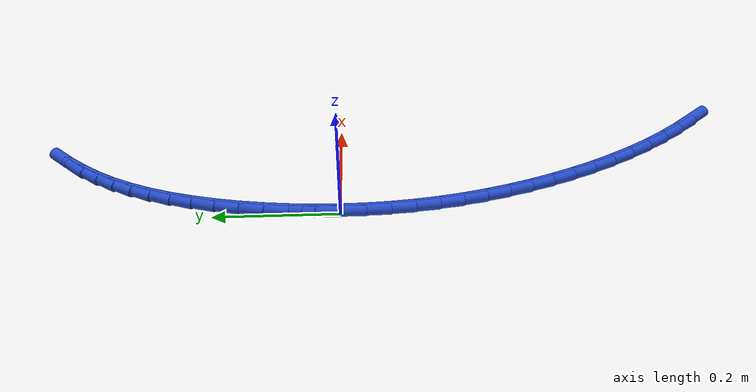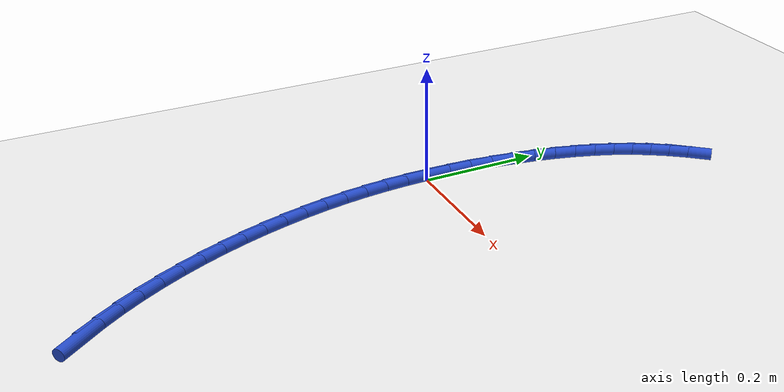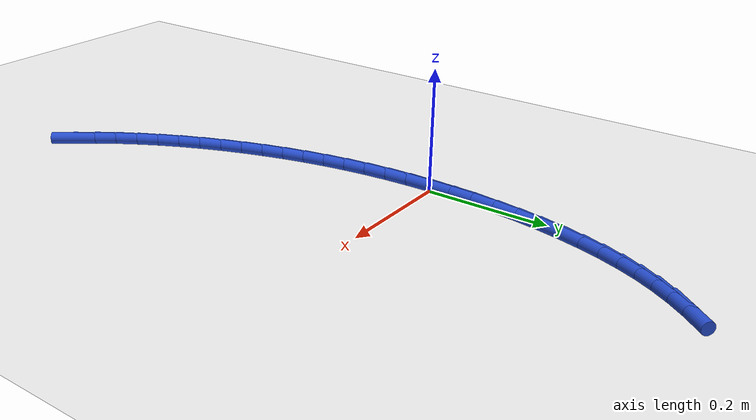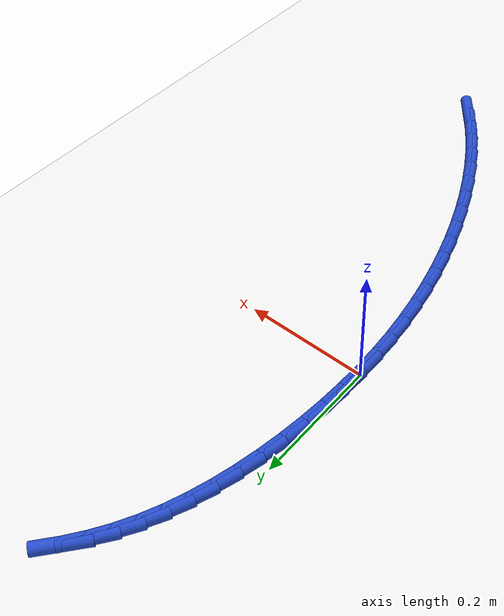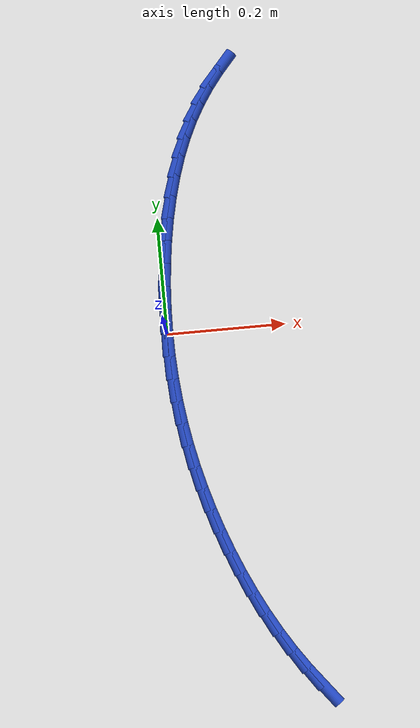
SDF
<sdf version="1.6">
 <world name="default">
  <model name="ground_plane">
   <static>1</static>
   <link name="link">
    <collision name="collision">
     <geometry><plane><normal>0 0 1</normal><size>100 100</size></plane></geometry>
     <surface><friction><ode><mu>100</mu><mu2>50</mu2></ode></friction></surface>
    </collision>
    <visual name="visual">
     <cast_shadows>0</cast_shadows>
     <geometry><plane><normal>0 0 1</normal><size>100 100</size></plane></geometry>
     <material>
      <script><uri>file://media/materials/scripts/gazebo.material</uri><name>Gazebo/WhiteGlow</name></script>
     </material>
    </visual>
   </link>
  </model>
  <model name="line">
   <link name="link_0">
    <pose>1.0408340855860843e-17 -5.551115123125783e-17 0.01 0 1.57 1.553180485187353</pose>
    <collision name="collision">
     <geometry><cylinder><radius>0.01</radius><length>0.08</length></cylinder></geometry>
    </collision>
    <visual name="visual">
     <material>
      <script><name>Gazebo/Blue</name><uri>file://media/materials/scripts/gazebo.material</uri></script>
     </material>
     <geometry><cylinder><radius>0.01</radius><length>0.08</length></cylinder></geometry>
    </visual>
   </link>
   <link name="link_1">
    <pose>0.0006947978671462665 0.03943757055368453 0.01 0 1.57 1.5161483572995698</pose>
    <collision name="collision">
     <geometry><cylinder><radius>0.01</radius><length>0.08</length></cylinder></geometry>
    </collision>
    <visual name="visual">
     <material>
      <script><name>Gazebo/Blue</name><uri>file://media/materials/scripts/gazebo.material</uri></script>
     </material>
     <geometry><cylinder><radius>0.01</radius><length>0.08</length></cylinder></geometry>
    </visual>
   </link>
   <link name="link_2">
    <pose>0.002861904546496357 0.07905384517186925 0.01 0 1.57 1.4789762295758846</pose>
    <collision name="collision">
     <geometry><cylinder><radius>0.01</radius><length>0.08</length></cylinder></geometry>
    </collision>
    <visual name="visual">
     <material>
      <script><name>Gazebo/Blue</name><uri>file://media/materials/scripts/gazebo.material</uri></script>
     </material>
     <geometry><cylinder><radius>0.01</radius><length>0.08</length></cylinder></geometry>
    </visual>
   </link>
   <link name="link_3">
    <pose>0.00649612071170814 0.11852229767331711 0.01 0 1.57 1.440843181561353</pose>
    <collision name="collision">
     <geometry><cylinder><radius>0.01</radius><length>0.08</length></cylinder></geometry>
    </collision>
    <visual name="visual">
     <material>
      <script><name>Gazebo/Blue</name><uri>file://media/materials/scripts/gazebo.material</uri></script>
     </material>
     <geometry><cylinder><radius>0.01</radius><length>0.08</length></cylinder></geometry>
    </visual>
   </link>
   <link name="link_4">
    <pose>0.011592247036439475 0.15751640187679114 0.01 0 1.57 1.4008800360170088</pose>
    <collision name="collision">
     <geometry><cylinder><radius>0.01</radius><length>0.08</length></cylinder></geometry>
    </collision>
    <visual name="visual">
     <material>
      <script><name>Gazebo/Blue</name><uri>file://media/materials/scripts/gazebo.material</uri></script>
     </material>
     <geometry><cylinder><radius>0.01</radius><length>0.08</length></cylinder></geometry>
    </visual>
   </link>
   <link name="link_5">
    <pose>0.018145084194348203 0.1957096316010543 0.01 0 1.57 1.3581127591257378</pose>
    <collision name="collision">
     <geometry><cylinder><radius>0.01</radius><length>0.08</length></cylinder></geometry>
    </collision>
    <visual name="visual">
     <material>
      <script><name>Gazebo/Blue</name><uri>file://media/materials/scripts/gazebo.material</uri></script>
     </material>
     <geometry><cylinder><radius>0.01</radius><length>0.08</length></cylinder></geometry>
    </visual>
   </link>
   <link name="link_6">
    <pose>0.026149432859092207 0.23277546066486973 0.01 0 1.57 1.3113962401348565</pose>
    <collision name="collision">
     <geometry><cylinder><radius>0.01</radius><length>0.08</length></cylinder></geometry>
    </collision>
    <visual name="visual">
     <material>
      <script><name>Gazebo/Blue</name><uri>file://media/materials/scripts/gazebo.material</uri></script>
     </material>
     <geometry><cylinder><radius>0.01</radius><length>0.08</length></cylinder></geometry>
    </visual>
   </link>
   <link name="link_7">
    <pose>0.03560009370432934 0.26838736288700044 0.01 0 1.57 1.2593325169538567</pose>
    <collision name="collision">
     <geometry><cylinder><radius>0.01</radius><length>0.08</length></cylinder></geometry>
    </collision>
    <visual name="visual">
     <material>
      <script><name>Gazebo/Blue</name><uri>file://media/materials/scripts/gazebo.material</uri></script>
     </material>
     <geometry><cylinder><radius>0.01</radius><length>0.08</length></cylinder></geometry>
    </visual>
   </link>
   <link name="link_8">
    <pose>0.04649186740371744 0.30221881208620927 0.01 0 1.57 1.2003665097344187</pose>
    <collision name="collision">
     <geometry><cylinder><radius>0.01</radius><length>0.08</length></cylinder></geometry>
    </collision>
    <visual name="visual">
     <material>
      <script><name>Gazebo/Blue</name><uri>file://media/materials/scripts/gazebo.material</uri></script>
     </material>
     <geometry><cylinder><radius>0.01</radius><length>0.08</length></cylinder></geometry>
    </visual>
   </link>
   <link name="link_9">
    <pose>0.0588332389268023 0.3339971721542838 0.01 0 1.57 1.1350544345884321</pose>
    <collision name="collision">
     <geometry><cylinder><radius>0.01</radius><length>0.08</length></cylinder></geometry>
    </collision>
    <visual name="visual">
     <material>
      <script><name>Gazebo/Blue</name><uri>file://media/materials/scripts/gazebo.material</uri></script>
     </material>
     <geometry><cylinder><radius>0.01</radius><length>0.08</length></cylinder></geometry>
    </visual>
   </link>
   <link name="link_10">
    <pose>0.0727366241320405 0.36385909681704937 0.01 0 1.57 1.0658637802430917</pose>
    <collision name="collision">
     <geometry><cylinder><radius>0.01</radius><length>0.08</length></cylinder></geometry>
    </collision>
    <visual name="visual">
     <material>
      <script><name>Gazebo/Blue</name><uri>file://media/materials/scripts/gazebo.material</uri></script>
     </material>
     <geometry><cylinder><radius>0.01</radius><length>0.08</length></cylinder></geometry>
    </visual>
   </link>
   <link name="link_11">
    <pose>0.08836213779160033 0.39212908270903224 0.01 0 1.57 0.9955748882761528</pose>
    <collision name="collision">
     <geometry><cylinder><radius>0.01</radius><length>0.08</length></cylinder></geometry>
    </collision>
    <visual name="visual">
     <material>
      <script><name>Gazebo/Blue</name><uri>file://media/materials/scripts/gazebo.material</uri></script>
     </material>
     <geometry><cylinder><radius>0.01</radius><length>0.08</length></cylinder></geometry>
    </visual>
   </link>
   <link name="link_12">
    <pose>0.10587014466901742 0.4191326109548012 0.01 0 1.57 0.9271982014820962</pose>
    <collision name="collision">
     <geometry><cylinder><radius>0.01</radius><length>0.08</length></cylinder></geometry>
    </collision>
    <visual name="visual">
     <material>
      <script><name>Gazebo/Blue</name><uri>file://media/materials/scripts/gazebo.material</uri></script>
     </material>
     <geometry><cylinder><radius>0.01</radius><length>0.08</length></cylinder></geometry>
    </visual>
   </link>
   <link name="link_13">
    <pose>0.1254210095278276 0.44519516267892545 0.01 0 1.57 0.8634780714453385</pose>
    <collision name="collision">
     <geometry><cylinder><radius>0.01</radius><length>0.08</length></cylinder></geometry>
    </collision>
    <visual name="visual">
     <material>
      <script><name>Gazebo/Blue</name><uri>file://media/materials/scripts/gazebo.material</uri></script>
     </material>
     <geometry><cylinder><radius>0.01</radius><length>0.08</length></cylinder></geometry>
    </visual>
   </link>
   <link name="link_183">
    <pose>0.20450318174450471 -0.6046952154828285 0.01 0 1.57 -0.9074806577390934</pose>
    <collision name="collision">
     <geometry><cylinder><radius>0.01</radius><length>0.08</length></cylinder></geometry>
    </collision>
    <visual name="visual">
     <material>
      <script><name>Gazebo/Blue</name><uri>file://media/materials/scripts/gazebo.material</uri></script>
     </material>
     <geometry><cylinder><radius>0.01</radius><length>0.08</length></cylinder></geometry>
    </visual>
   </link>
   <link name="link_184">
    <pose>0.18158933707929723 -0.5753723052778269 0.01 0 1.57 -0.9596028737721725</pose>
    <collision name="collision">
     <geometry><cylinder><radius>0.01</radius><length>0.08</length></cylinder></geometry>
    </collision>
    <visual name="visual">
     <material>
      <script><name>Gazebo/Blue</name><uri>file://media/materials/scripts/gazebo.material</uri></script>
     </material>
     <geometry><cylinder><radius>0.01</radius><length>0.08</length></cylinder></geometry>
    </visual>
   </link>
   <link name="link_185">
    <pose>0.1600002890696754 -0.5445614774891263 0.01 0 1.57 -1.008412161652165</pose>
    <collision name="collision">
     <geometry><cylinder><radius>0.01</radius><length>0.08</length></cylinder></geometry>
    </collision>
    <visual name="visual">
     <material>
      <script><name>Gazebo/Blue</name><uri>file://media/materials/scripts/gazebo.material</uri></script>
     </material>
     <geometry><cylinder><radius>0.01</radius><length>0.08</length></cylinder></geometry>
    </visual>
   </link>
   <link name="link_186">
    <pose>0.13974450668708144 -0.5124235118626548 0.01 0 1.57 -1.0540851003853098</pose>
    <collision name="collision">
     <geometry><cylinder><radius>0.01</radius><length>0.08</length></cylinder></geometry>
    </collision>
    <visual name="visual">
     <material>
      <script><name>Gazebo/Blue</name><uri>file://media/materials/scripts/gazebo.material</uri></script>
     </material>
     <geometry><cylinder><radius>0.01</radius><length>0.08</length></cylinder></geometry>
    </visual>
   </link>
   <link name="link_187">
    <pose>0.12082766921385653 -0.4791311248864649 0.01 0 1.57 -1.0970430386733558</pose>
    <collision name="collision">
     <geometry><cylinder><radius>0.01</radius><length>0.08</length></cylinder></geometry>
    </collision>
    <visual name="visual">
     <material>
      <script><name>Gazebo/Blue</name><uri>file://media/materials/scripts/gazebo.material</uri></script>
     </material>
     <geometry><cylinder><radius>0.01</radius><length>0.08</length></cylinder></geometry>
    </visual>
   </link>
   <link name="link_188">
    <pose>0.10325545593234188 -0.4448570330486096 0.01 0 1.57 -1.1376904338843041</pose>
    <collision name="collision">
     <geometry><cylinder><radius>0.01</radius><length>0.08</length></cylinder></geometry>
    </collision>
    <visual name="visual">
     <material>
      <script><name>Gazebo/Blue</name><uri>file://media/materials/scripts/gazebo.material</uri></script>
     </material>
     <geometry><cylinder><radius>0.01</radius><length>0.08</length></cylinder></geometry>
    </visual>
   </link>
   <link name="link_189">
    <pose>0.08703354612487874 -0.4097739528371415 0.01 0 1.57 -1.1764140569046717</pose>
    <collision name="collision">
     <geometry><cylinder><radius>0.01</radius><length>0.08</length></cylinder></geometry>
    </collision>
    <visual name="visual">
     <material>
      <script><name>Gazebo/Blue</name><uri>file://media/materials/scripts/gazebo.material</uri></script>
     </material>
     <geometry><cylinder><radius>0.01</radius><length>0.08</length></cylinder></geometry>
    </visual>
   </link>
   <link name="link_190">
    <pose>0.07216761907380828 -0.3740546007401135 0.01 0 1.57 -1.2135851695857742</pose>
    <collision name="collision">
     <geometry><cylinder><radius>0.01</radius><length>0.08</length></cylinder></geometry>
    </collision>
    <visual name="visual">
     <material>
      <script><name>Gazebo/Blue</name><uri>file://media/materials/scripts/gazebo.material</uri></script>
     </material>
     <geometry><cylinder><radius>0.01</radius><length>0.08</length></cylinder></geometry>
    </visual>
   </link>
   <link name="link_191">
    <pose>0.05866335406147176 -0.33787169324557853 0.01 0 1.57 -1.2495667804838013</pose>
    <collision name="collision">
     <geometry><cylinder><radius>0.01</radius><length>0.08</length></cylinder></geometry>
    </collision>
    <visual name="visual">
     <material>
      <script><name>Gazebo/Blue</name><uri>file://media/materials/scripts/gazebo.material</uri></script>
     </material>
     <geometry><cylinder><radius>0.01</radius><length>0.08</length></cylinder></geometry>
    </visual>
   </link>
   <link name="link_192">
    <pose>0.0465264412329866 -0.3013976214657449 0.01 0 1.57 -1.2852236159095083</pose>
    <collision name="collision">
     <geometry><cylinder><radius>0.01</radius><length>0.08</length></cylinder></geometry>
    </collision>
    <visual name="visual">
     <material>
      <script><name>Gazebo/Blue</name><uri>file://media/materials/scripts/gazebo.material</uri></script>
     </material>
     <geometry><cylinder><radius>0.01</radius><length>0.08</length></cylinder></geometry>
    </visual>
   </link>
   <link name="link_193">
    <pose>0.035764643375494246 -0.2647426940716667 0.01 0 1.57 -1.3217564608193977</pose>
    <collision name="collision">
     <geometry><cylinder><radius>0.01</radius><length>0.08</length></cylinder></geometry>
    </collision>
    <visual name="visual">
     <material>
      <script><name>Gazebo/Blue</name><uri>file://media/materials/scripts/gazebo.material</uri></script>
     </material>
     <geometry><cylinder><radius>0.01</radius><length>0.08</length></cylinder></geometry>
    </visual>
   </link>
   <link name="link_194">
    <pose>0.02639023934393112 -0.22788194866022737 0.01 0 1.57 -1.359132743086357</pose>
    <collision name="collision">
     <geometry><cylinder><radius>0.01</radius><length>0.08</length></cylinder></geometry>
    </collision>
    <visual name="visual">
     <material>
      <script><name>Gazebo/Blue</name><uri>file://media/materials/scripts/gazebo.material</uri></script>
     </material>
     <geometry><cylinder><radius>0.01</radius><length>0.08</length></cylinder></geometry>
    </visual>
   </link>
   <link name="link_195">
    <pose>0.018416102611528158 -0.19077261205594465 0.01 0 1.57 -1.397138889861582</pose>
    <collision name="collision">
     <geometry><cylinder><radius>0.01</radius><length>0.08</length></cylinder></geometry>
    </collision>
    <visual name="visual">
     <material>
      <script><name>Gazebo/Blue</name><uri>file://media/materials/scripts/gazebo.material</uri></script>
     </material>
     <geometry><cylinder><radius>0.01</radius><length>0.08</length></cylinder></geometry>
    </visual>
   </link>
   <link name="link_196">
    <pose>0.011855106651516364 -0.15337191108333625 0.01 0 1.57 -1.435546434207701</pose>
    <collision name="collision">
     <geometry><cylinder><radius>0.01</radius><length>0.08</length></cylinder></geometry>
    </collision>
    <visual name="visual">
     <material>
      <script><name>Gazebo/Blue</name><uri>file://media/materials/scripts/gazebo.material</uri></script>
     </material>
     <geometry><cylinder><radius>0.01</radius><length>0.08</length></cylinder></geometry>
    </visual>
   </link>
   <link name="link_197">
    <pose>0.006720124937126686 -0.11563707256691987 0.01 0 1.57 -1.4741182284068919</pose>
    <collision name="collision">
     <geometry><cylinder><radius>0.01</radius><length>0.08</length></cylinder></geometry>
    </collision>
    <visual name="visual">
     <material>
      <script><name>Gazebo/Blue</name><uri>file://media/materials/scripts/gazebo.material</uri></script>
     </material>
     <geometry><cylinder><radius>0.01</radius><length>0.08</length></cylinder></geometry>
    </visual>
   </link>
   <link name="link_198">
    <pose>0.003024030941590086 -0.07752532333121316 0.01 0 1.57 -1.5126152609250503</pose>
    <collision name="collision">
     <geometry><cylinder><radius>0.01</radius><length>0.08</length></cylinder></geometry>
    </collision>
    <visual name="visual">
     <material>
      <script><name>Gazebo/Blue</name><uri>file://media/materials/scripts/gazebo.material</uri></script>
     </material>
     <geometry><cylinder><radius>0.01</radius><length>0.08</length></cylinder></geometry>
    </visual>
   </link>
   <link name="link_199">
    <pose>0.0007796981381375367 -0.03899389020073395 0.01 0 1.57 -1.5508035985190782</pose>
    <collision name="collision">
     <geometry><cylinder><radius>0.01</radius><length>0.08</length></cylinder></geometry>
    </collision>
    <visual name="visual">
     <material>
      <script><name>Gazebo/Blue</name><uri>file://media/materials/scripts/gazebo.material</uri></script>
     </material>
     <geometry><cylinder><radius>0.01</radius><length>0.08</length></cylinder></geometry>
    </visual>
   </link>
   <link name="link_200">
    <pose>8.673617379884035e-19 1.249000902703301e-16 0.01 0 1.57 1.553131695034742</pose>
    <collision name="collision">
     <geometry><cylinder><radius>0.01</radius><length>0.08</length></cylinder></geometry>
    </collision>
    <visual name="visual">
     <material>
      <script><name>Gazebo/Blue</name><uri>file://media/materials/scripts/gazebo.material</uri></script>
     </material>
     <geometry><cylinder><radius>0.01</radius><length>0.08</length></cylinder></geometry>
    </visual>
   </link>
   <link name="link_201">
    <pose>0.0006978100004084815 0.03949912044647217 0.01 0 1.57 1.5531316950347425</pose>
    <collision name="collision">
     <geometry><cylinder><radius>0.01</radius><length>0.08</length></cylinder></geometry>
    </collision>
    <visual name="visual">
     <material>
      <script><name>Gazebo/Blue</name><uri>file://media/materials/scripts/gazebo.material</uri></script>
     </material>
     <geometry><cylinder><radius>0.01</radius><length>0.08</length></cylinder></geometry>
    </visual>
   </link>
  </model>
 </world>
</sdf>
